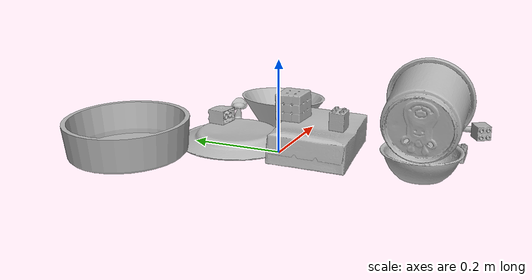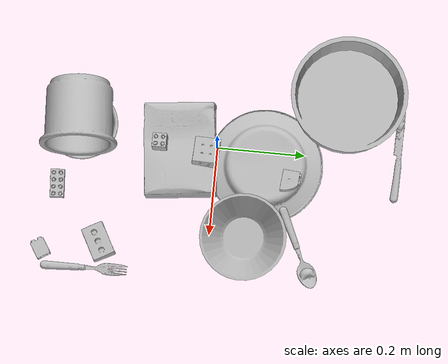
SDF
<sdf version="1.4">
  <world name="default">
    <light name="light1" type="point">
      <pose>0 0 1 0 0 0</pose>
      <diffuse>3 3 3 1</diffuse>
      <specular>3 3 3 1</specular>
    </light>
    <light name="light2" type="point">
      <pose>0 0.5 2 0 0 0</pose>
      <diffuse>1 1 1 1</diffuse>
      <specular>1 1 1 1</specular>
    </light>
    <light name="light3" type="point">
      <pose>0 0.5 2 0 0 0</pose>
      <diffuse>3 3 3 1</diffuse>
      <specular>3 3 3 1</specular>
    </light>
    <scene>
      <ambient>0.7 0.7 0.7</ambient>
    </scene>
    <model name="plate1">
      <link name="link_plate1">
        <collision name="default">
          <geometry>
            <mesh>
              <uri>model://plate/collision_meshes/collision.obj</uri>
              <scale>1.0 1.0 1.0</scale>
            </mesh>
          </geometry>
          <surface>
            <friction>
              <ode>
                <mu>0.5</mu>
                <mu2>0.5</mu2>
              </ode>
            </friction>
          <contact>
        <ode>
            <max_vel>0</max_vel>
            <min_depth>0.0001</min_depth>
            <kp>1e8</kp>
        </ode>
    </contact></surface>
        </collision>
        <visual name="default">
          <geometry>
            <mesh>
              <uri>model://plate/visual_meshes/visual.dae</uri>
              <scale>1.0 1.0 1.0</scale>
            </mesh>
          </geometry>
        </visual>
        <inertial>
          <mass>0.14927330613136292</mass>
          <pose>-0.0006044599576853216 0.00027825793949887156 -0.0010561984963715076 0.0022187657602494516 -0.0032254905015569333 0.45261542380491104</pose>
          <inertia>
            <ixx>0.0006983033</ixx>
            <iyy>0.0006916243</iyy>
            <izz>0.0013657772</izz>
            <ixy>0</ixy>
            <ixz>0</ixz>
            <iyz>0</iyz>
          </inertia>
        </inertial>
      </link>
      <pose>0.03244199603796005 0.11290092766284943 0.01387657318264246 3.125642553623539 -0.006831102099021438 2.188097051483819</pose>
    </model>
    <model name="plate2">
      <link name="link_plate2">
        <collision name="default">
          <geometry>
            <mesh>
              <uri>model://pan_tefal/collision_meshes/collision.obj</uri>
              <scale>1.0 1.0 1.0</scale>
            </mesh>
          </geometry>
          <surface>
            <friction>
              <ode>
                <mu>0.5</mu>
                <mu2>0.5</mu2>
              </ode>
            </friction>
          <contact>
        <ode>
            <max_vel>0</max_vel>
            <min_depth>0.0001</min_depth>
            <kp>1e8</kp>
        </ode>
    </contact></surface>
        </collision>
        <visual name="default">
          <geometry>
            <mesh>
              <uri>model://pan_tefal/visual_meshes/visual.dae</uri>
              <scale>1.0 1.0 1.0</scale>
            </mesh>
          </geometry>
        </visual>
        <inertial>
          <mass>1.1722657680511475</mass>
          <pose>-0.00018002268916461617 3.2786720112198964e-05 -0.008514933288097382 0.0008190189984333748 -0.0003301390782503885 -0.3318520141268409</pose>
          <inertia>
            <ixx>0.008092094</ixx>
            <iyy>0.008144264</iyy>
            <izz>0.014895983</izz>
            <ixy>0</ixy>
            <ixz>0</ixz>
            <iyz>0</iyz>
          </inertia>
        </inertial>
      </link>
      <pose>-0.1386735588312149 0.28532928228378296 0.04091053083539009 0.01836885078537293 -0.023570578998875453 -1.0392890881486712</pose>
    </model>
    <model name="bowl1">
      <link name="link_bowl1">
        <collision name="default">
          <geometry>
            <mesh>
              <uri>model://bowl_a/collision_meshes/collision.obj</uri>
              <scale>1.0 1.0 1.0</scale>
            </mesh>
          </geometry>
          <surface>
            <friction>
              <ode>
                <mu>0.5</mu>
                <mu2>0.5</mu2>
              </ode>
            </friction>
          <contact>
        <ode>
            <max_vel>0</max_vel>
            <min_depth>0.0001</min_depth>
            <kp>1e8</kp>
        </ode>
    </contact></surface>
        </collision>
        <visual name="default">
          <geometry>
            <mesh>
              <uri>model://bowl_a/visual_meshes/visual.dae</uri>
              <scale>1.0 1.0 1.0</scale>
            </mesh>
          </geometry>
        </visual>
        <inertial>
          <mass>0.2988097667694092</mass>
          <pose>0.0002786743571050465 4.731365334009752e-05 -0.0013765293406322598 -0.0009805349169279892 -0.001093820822183951 -0.19123530183129564</pose>
          <inertia>
            <ixx>0.00085072505</ixx>
            <iyy>0.00085594796</iyy>
            <izz>0.0015130473</izz>
            <ixy>0</ixy>
            <ixz>0</ixz>
            <iyz>0</iyz>
          </inertia>
        </inertial>
      </link>
      <pose>0.2015068084001541 0.0779406800866127 0.03404763340950012 -0.004253647536345693 -0.06730002440553268 2.687504072364409</pose>
    </model>
    <model name="bowl2">
      <link name="link_bowl2">
        <collision name="default">
          <geometry>
            <mesh>
              <uri>model://bowl/collision_meshes/collision.obj</uri>
              <scale>1.0 1.0 1.0</scale>
            </mesh>
          </geometry>
          <surface>
            <friction>
              <ode>
                <mu>0.5</mu>
                <mu2>0.5</mu2>
              </ode>
            </friction>
          <contact>
        <ode>
            <max_vel>0</max_vel>
            <min_depth>0.0001</min_depth>
            <kp>1e8</kp>
        </ode>
    </contact></surface>
        </collision>
        <visual name="default">
          <geometry>
            <mesh>
              <uri>model://bowl/visual_meshes/visual.dae</uri>
              <scale>1.0 1.0 1.0</scale>
            </mesh>
          </geometry>
        </visual>
        <inertial>
          <mass>0.05087859928607941</mass>
          <pose>0.00020445352129172534 -0.001030206447467208 -0.0008042655535973608 -0.015764084400621287 0.014546790156403148 0.7140405806030785</pose>
          <inertia>
            <ixx>0.0001168722</ixx>
            <iyy>0.00011426082</iyy>
            <izz>0.0001966192</izz>
            <ixy>0</ixy>
            <ixz>0</ixz>
            <iyz>0</iyz>
          </inertia>
        </inertial>
      </link>
      <pose>-0.01825765334069729 -0.3082200586795807 0.02778574638068676 -0.00037657946275277836 -7.61103893011718e-05 1.440833030907852</pose>
    </model>
    <model name="silverware1">
      <link name="link_silverware1">
        <collision name="default">
          <geometry>
            <mesh>
              <uri>model://spoon/collision_meshes/collision.obj</uri>
              <scale>1.0 1.0 1.0</scale>
            </mesh>
          </geometry>
          <surface>
            <friction>
              <ode>
                <mu>0.5</mu>
                <mu2>0.5</mu2>
              </ode>
            </friction>
          <contact>
        <ode>
            <max_vel>0</max_vel>
            <min_depth>0.0001</min_depth>
            <kp>1e8</kp>
        </ode>
    </contact></surface>
        </collision>
        <visual name="default">
          <geometry>
            <mesh>
              <uri>model://spoon/visual_meshes/visual.dae</uri>
              <scale>1.0 1.0 1.0</scale>
            </mesh>
          </geometry>
        </visual>
        <inertial>
          <mass>0.031133336946368217</mass>
          <pose>-0.005526311229914427 -0.001603417214937508 -0.000727165665011853 0.03521724372111935 -0.03906583963771688 0.006150613707428126</pose>
          <inertia>
            <ixx>1.7316867e-06</ixx>
            <iyy>0.00011846133</iyy>
            <izz>0.00011931534</izz>
            <ixy>0</ixy>
            <ixz>0</ixz>
            <iyz>0</iyz>
          </inertia>
        </inertial>
      </link>
      <pose>0.21097125113010406 0.20286473631858826 0.012138519436120987 -0.08813534840924592 0.09106310451425037 0.44197021718248863</pose>
    </model>
    <model name="box1">
      <link name="link_box1">
        <collision name="default">
          <geometry>
            <mesh>
              <uri>model://cracker_box/collision_meshes/collision.obj</uri>
              <scale>1.0 1.0 1.0</scale>
            </mesh>
          </geometry>
          <surface>
            <friction>
              <ode>
                <mu>0.5</mu>
                <mu2>0.5</mu2>
              </ode>
            </friction>
          <contact>
        <ode>
            <max_vel>0</max_vel>
            <min_depth>0.0001</min_depth>
            <kp>1e8</kp>
        </ode>
    </contact></surface>
        </collision>
        <visual name="default">
          <geometry>
            <mesh>
              <uri>model://cracker_box/visual_meshes/visual.dae</uri>
              <scale>1.0 1.0 1.0</scale>
            </mesh>
          </geometry>
        </visual>
        <inertial>
          <mass>2.900710344314575</mass>
          <pose>0.0009464158210903406 0.00025434247800149024 -0.0017029534792527556 -0.0003162075379034469 -0.011106488669169442 0.0025467947685016775</pose>
          <inertia>
            <ixx>0.007378111</ixx>
            <iyy>0.012182713</iyy>
            <izz>0.01738585</izz>
            <ixy>0</ixy>
            <ixz>0</ixz>
            <iyz>0</iyz>
          </inertia>
        </inertial>
      </link>
      <pose>0.01827685907483101 -0.08251064270734787 0.03788713738322258 0.034314538797825256 0.00044278468375436156 0.0995127585199519</pose>
    </model>
    <model name="box2">
      <link name="link_box2">
        <collision name="default">
          <geometry>
            <mesh>
              <uri>model://rubiks_cube/collision_meshes/collision.obj</uri>
              <scale>1.0 1.0 1.0</scale>
            </mesh>
          </geometry>
          <surface>
            <friction>
              <ode>
                <mu>0.5</mu>
                <mu2>0.5</mu2>
              </ode>
            </friction>
          <contact>
        <ode>
            <max_vel>0</max_vel>
            <min_depth>0.0001</min_depth>
            <kp>1e8</kp>
        </ode>
    </contact></surface>
        </collision>
        <visual name="default">
          <geometry>
            <mesh>
              <uri>model://rubiks_cube/visual_meshes/visual.dae</uri>
              <scale>1.0 1.0 1.0</scale>
            </mesh>
          </geometry>
        </visual>
        <inertial>
          <mass>0.28670012950897217</mass>
          <pose>2.6721039830590598e-05 5.2569666877388954e-05 -7.264316082000732e-06 -0.05467310906580907 -0.09814045067101686 -0.03445712671449578</pose>
          <inertia>
            <ixx>0.00015842107</ixx>
            <iyy>0.0001576823</iyy>
            <izz>0.00015973386</izz>
            <ixy>0</ixy>
            <ixz>0</ixz>
            <iyz>0</iyz>
          </inertia>
        </inertial>
      </link>
      <pose>0.02467615157365799 -0.022280903533101082 0.1005236878991127 3.1011328721956106 0.016013159384002676 1.4959840039372754</pose>
    </model>
    <model name="cup1">
      <link name="link_cup1">
        <collision name="default">
          <geometry>
            <mesh>
              <uri>model://g_cups/collision_meshes/collision.obj</uri>
              <scale>2.0 2.0 2.0</scale>
            </mesh>
          </geometry>
          <surface>
            <friction>
              <ode>
                <mu>0.5</mu>
                <mu2>0.5</mu2>
              </ode>
            </friction>
          <contact>
        <ode>
            <max_vel>0</max_vel>
            <min_depth>0.0001</min_depth>
            <kp>1e8</kp>
        </ode>
    </contact></surface>
        </collision>
        <visual name="default">
          <geometry>
            <mesh>
              <uri>model://g_cups/visual_meshes/visual.dae</uri>
              <scale>2.0 2.0 2.0</scale>
            </mesh>
          </geometry>
        </visual>
        <inertial>
          <mass>0.7979594469070435</mass>
          <pose>-0.001589252962730825 -8.413367322646081e-05 -0.004265873227268457 -0.2138242542550812 -0.3141046905663657 0.3112069095441374</pose>
          <inertia>
            <ixx>0.0037255902</ixx>
            <iyy>0.003712916</iyy>
            <izz>0.0038590694</izz>
            <ixy>0</ixy>
            <ixz>0</ixz>
            <iyz>0</iyz>
          </inertia>
        </inertial>
      </link>
      <pose>-0.02928893454372883 -0.31249961256980896 0.12993964552879333 1.416912972623944 0.06092359070345077 1.6396398116474122</pose>
    </model>
    <model name="silverware2">
      <link name="link_silverware2">
        <collision name="default">
          <geometry>
            <mesh>
              <uri>model://fork/collision_meshes/collision.obj</uri>
              <scale>1.0 1.0 1.0</scale>
            </mesh>
          </geometry>
          <surface>
            <friction>
              <ode>
                <mu>0.5</mu>
                <mu2>0.5</mu2>
              </ode>
            </friction>
          <contact>
        <ode>
            <max_vel>0</max_vel>
            <min_depth>0.0001</min_depth>
            <kp>1e8</kp>
        </ode>
    </contact></surface>
        </collision>
        <visual name="default">
          <geometry>
            <mesh>
              <uri>model://fork/visual_meshes/visual.dae</uri>
              <scale>1.0 1.0 1.0</scale>
            </mesh>
          </geometry>
        </visual>
        <inertial>
          <mass>0.026295984163880348</mass>
          <pose>-0.02957003563642502 0.0004658822435885668 0.0003218861238565296 -0.013551585765180826 -0.010977835012843383 0.014453895551669751</pose>
          <inertia>
            <ixx>9.2182285e-07</ixx>
            <iyy>6.865125e-05</iyy>
            <izz>6.9063564e-05</izz>
            <ixy>0</ixy>
            <ixz>0</ixz>
            <iyz>0</iyz>
          </inertia>
        </inertial>
      </link>
      <pose>0.3011545240879059 -0.2748119831085205 0.007446620613336563 -3.0634945705997327 0.0028358657615693526 1.600448659720524</pose>
    </model>
    <model name="silverware3">
      <link name="link_silverware3">
        <collision name="default">
          <geometry>
            <mesh>
              <uri>model://knife/collision_meshes/collision.obj</uri>
              <scale>1.0 1.0 1.0</scale>
            </mesh>
          </geometry>
          <surface>
            <friction>
              <ode>
                <mu>0.5</mu>
                <mu2>0.5</mu2>
              </ode>
            </friction>
          <contact>
        <ode>
            <max_vel>0</max_vel>
            <min_depth>0.0001</min_depth>
            <kp>1e8</kp>
        </ode>
    </contact></surface>
        </collision>
        <visual name="default">
          <geometry>
            <mesh>
              <uri>model://knife/visual_meshes/visual.dae</uri>
              <scale>1.0 1.0 1.0</scale>
            </mesh>
          </geometry>
        </visual>
        <inertial>
          <mass>0.018686598166823387</mass>
          <pose>-0.023785265162587166 0.001527512213215232 5.06201722600963e-05 0.0730586728597059 0.01724841756758314 -0.007409823953988089</pose>
          <inertia>
            <ixx>5.3040145e-07</ixx>
            <iyy>7.1790884e-05</iyy>
            <izz>7.1961695e-05</izz>
            <ixy>0</ixy>
            <ixz>0</ixz>
            <iyz>0</iyz>
          </inertia>
        </inertial>
      </link>
      <pose>-0.019307350739836693 0.40994417667388916 0.005810709670186043 2.889354650088004 0.025914653544366836 3.123128091411746</pose>
    </model>
    <model name="toy1">
      <link name="link_toy1">
        <collision name="default">
          <geometry>
            <mesh>
              <uri>model://d_lego_duplo/collision_meshes/collision.obj</uri>
              <scale>1.0 1.0 1.0</scale>
            </mesh>
          </geometry>
          <surface>
            <friction>
              <ode>
                <mu>0.5</mu>
                <mu2>0.5</mu2>
              </ode>
            </friction>
          <contact>
        <ode>
            <max_vel>0</max_vel>
            <min_depth>0.0001</min_depth>
            <kp>1e8</kp>
        </ode>
    </contact></surface>
        </collision>
        <visual name="default">
          <geometry>
            <mesh>
              <uri>model://d_lego_duplo/visual_meshes/visual.dae</uri>
              <scale>1.0 1.0 1.0</scale>
            </mesh>
          </geometry>
        </visual>
        <inertial>
          <mass>0.057973701506853104</mass>
          <pose>0.002830564510077238 0.0001636612432776019 0.000858980929479003 0.08010949801199577 -0.38355255965562274 0.0010296774355632512</pose>
          <inertia>
            <ixx>1.1222855e-05</ixx>
            <iyy>1.5928275e-05</iyy>
            <izz>1.5360585e-05</izz>
            <ixy>0</ixy>
            <ixz>0</ixz>
            <iyz>0</iyz>
          </inertia>
        </inertial>
      </link>
      <pose>0.06686057150363922 0.17253614962100983 0.04505293071269989 1.568532856956636 -0.005287651788307335 3.0477769694556933</pose>
    </model>
    <model name="toy2">
      <link name="link_toy2">
        <collision name="default">
          <geometry>
            <mesh>
              <uri>model://c_lego_duplo/collision_meshes/collision.obj</uri>
              <scale>1.0 1.0 1.0</scale>
            </mesh>
          </geometry>
          <surface>
            <friction>
              <ode>
                <mu>0.5</mu>
                <mu2>0.5</mu2>
              </ode>
            </friction>
          <contact>
        <ode>
            <max_vel>0</max_vel>
            <min_depth>0.0001</min_depth>
            <kp>1e8</kp>
        </ode>
    </contact></surface>
        </collision>
        <visual name="default">
          <geometry>
            <mesh>
              <uri>model://c_lego_duplo/visual_meshes/visual.dae</uri>
              <scale>1.0 1.0 1.0</scale>
            </mesh>
          </geometry>
        </visual>
        <inertial>
          <mass>0.03295557200908661</mass>
          <pose>0.00031645927811041474 0.0001946454867720604 0.0010453149443492293 -0.011520797378012098 0.005900082234647494 0.03110035414112205</pose>
          <inertia>
            <ixx>1.2681916e-05</ixx>
            <iyy>4.0510618e-06</iyy>
            <izz>1.4820123e-05</izz>
            <ixy>0</ixy>
            <ixz>0</ixz>
            <iyz>0</iyz>
          </inertia>
        </inertial>
      </link>
      <pose>0.11680794507265091 -0.3532542288303375 0.011981489136815071 0.008019393527692454 -0.0020917513726336026 -1.5273477904055905</pose>
    </model>
    <model name="toy3">
      <link name="link_toy3">
        <collision name="default">
          <geometry>
            <mesh>
              <uri>model://foam_brick/collision_meshes/collision.obj</uri>
              <scale>1.0 1.0 1.0</scale>
            </mesh>
          </geometry>
          <surface>
            <friction>
              <ode>
                <mu>0.5</mu>
                <mu2>0.5</mu2>
              </ode>
            </friction>
          <contact>
        <ode>
            <max_vel>0</max_vel>
            <min_depth>0.0001</min_depth>
            <kp>1e8</kp>
        </ode>
    </contact></surface>
        </collision>
        <visual name="default">
          <geometry>
            <mesh>
              <uri>model://foam_brick/visual_meshes/visual.dae</uri>
              <scale>1.0 1.0 1.0</scale>
            </mesh>
          </geometry>
        </visual>
        <inertial>
          <mass>0.2026180773973465</mass>
          <pose>-0.00025224717683158815 0.0003458433202467859 -0.0002532101352699101 -0.2940154265809752 0.017274439844268085 -0.0007449877964386924</pose>
          <inertia>
            <ixx>8.850737e-05</ixx>
            <iyy>0.00014130655</iyy>
            <izz>0.00014310238</izz>
            <ixy>0</ixy>
            <ixz>0</ixz>
            <iyz>0</iyz>
          </inertia>
        </inertial>
      </link>
      <pose>0.2423824518918991 -0.2463996410369873 0.02592281624674797 0.013417018606362272 0.004152915399492819 0.49305629162038817</pose>
    </model>
    <model name="toy4">
      <link name="link_toy4">
        <collision name="default">
          <geometry>
            <mesh>
              <uri>model://f_lego_duplo/collision_meshes/collision.obj</uri>
              <scale>1.0 1.0 1.0</scale>
            </mesh>
          </geometry>
          <surface>
            <friction>
              <ode>
                <mu>0.5</mu>
                <mu2>0.5</mu2>
              </ode>
            </friction>
          <contact>
        <ode>
            <max_vel>0</max_vel>
            <min_depth>0.0001</min_depth>
            <kp>1e8</kp>
        </ode>
    </contact></surface>
        </collision>
        <visual name="default">
          <geometry>
            <mesh>
              <uri>model://f_lego_duplo/visual_meshes/visual.dae</uri>
              <scale>1.0 1.0 1.0</scale>
            </mesh>
          </geometry>
        </visual>
        <inertial>
          <mass>0.026114314794540405</mass>
          <pose>2.3694528863416053e-05 0.00013393153494689614 0.001883787801489234 0.02983849389432246 -0.014425286210530337 -0.675657453158783</pose>
          <inertia>
            <ixx>5.5180976e-06</ixx>
            <iyy>5.5672576e-06</iyy>
            <izz>4.7899434e-06</izz>
            <ixy>0</ixy>
            <ixz>0</ixz>
            <iyz>0</iyz>
          </inertia>
        </inertial>
      </link>
      <pose>0.009319670498371124 -0.12873037159442902 0.08679406344890594 -0.048431504564185456 0.08302407842708474 -3.13808751262021</pose>
    </model>
    <model name="toy5">
      <link name="link_toy5">
        <collision name="default">
          <geometry>
            <mesh>
              <uri>model://b_lego_duplo/collision_meshes/collision.obj</uri>
              <scale>1.0 1.0 1.0</scale>
            </mesh>
          </geometry>
          <surface>
            <friction>
              <ode>
                <mu>0.5</mu>
                <mu2>0.5</mu2>
              </ode>
            </friction>
          <contact>
        <ode>
            <max_vel>0</max_vel>
            <min_depth>0.0001</min_depth>
            <kp>1e8</kp>
        </ode>
    </contact></surface>
        </collision>
        <visual name="default">
          <geometry>
            <mesh>
              <uri>model://b_lego_duplo/visual_meshes/visual.dae</uri>
              <scale>1.0 1.0 1.0</scale>
            </mesh>
          </geometry>
        </visual>
        <inertial>
          <mass>0.0471348837018013</mass>
          <pose>-0.00011053068010369316 -9.152583515970036e-06 0.0019294292433187366 -0.037494549971735465 -0.026354388193955382 0.45188781154390406</pose>
          <inertia>
            <ixx>9.646508e-06</ixx>
            <iyy>9.711356e-06</iyy>
            <izz>8.594722e-06</izz>
            <ixy>0</ixy>
            <ixz>0</ixz>
            <iyz>0</iyz>
          </inertia>
        </inertial>
      </link>
      <pose>0.266962468624115 -0.37674984335899353 0.016180144622921944 0.05093444806352711 -1.5624406170507315 0.5031575839973872</pose>
    </model>
  <physics type="ode">
      <max_contacts>50</max_contacts>
      <ode>
        <solver>
          <type>quick</type>
          <iters>75</iters>
        </solver>
        <constraints>
          <contact_max_correcting_vel>0</contact_max_correcting_vel>
          <contact_surface_layer>0</contact_surface_layer>
        </constraints>
      </ode>
    </physics></world>
</sdf>
